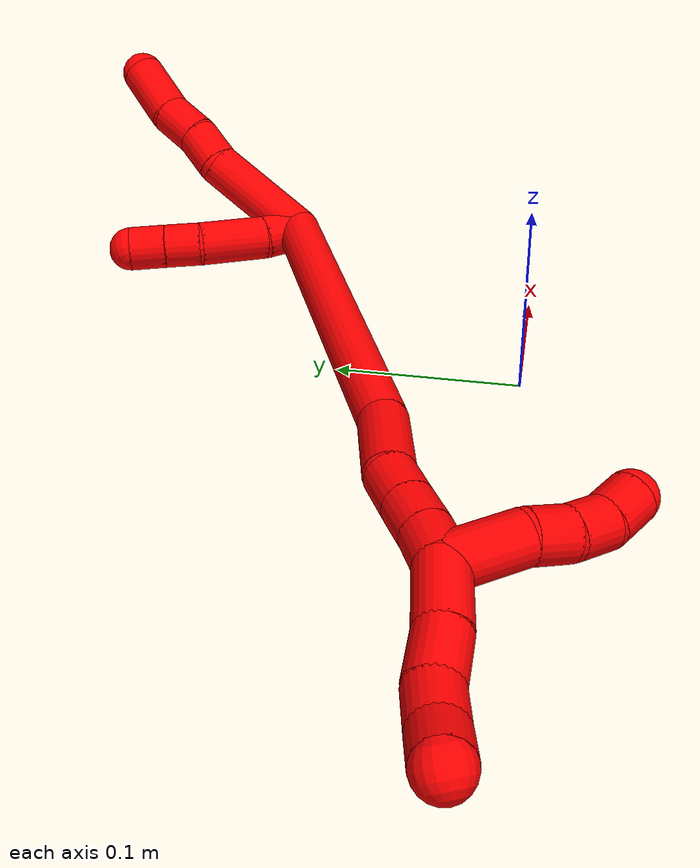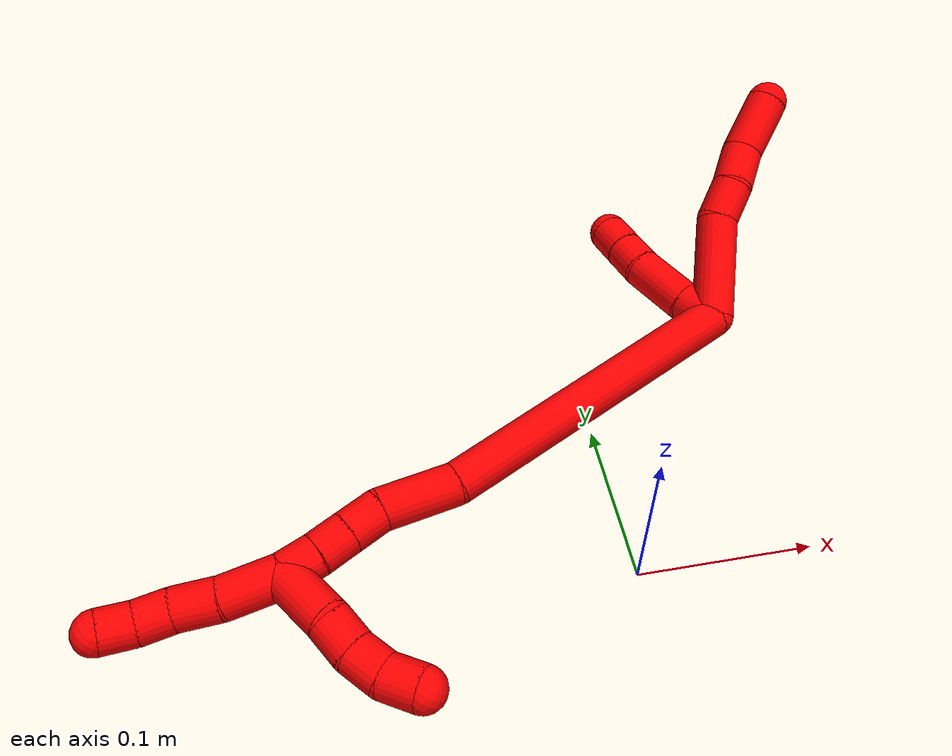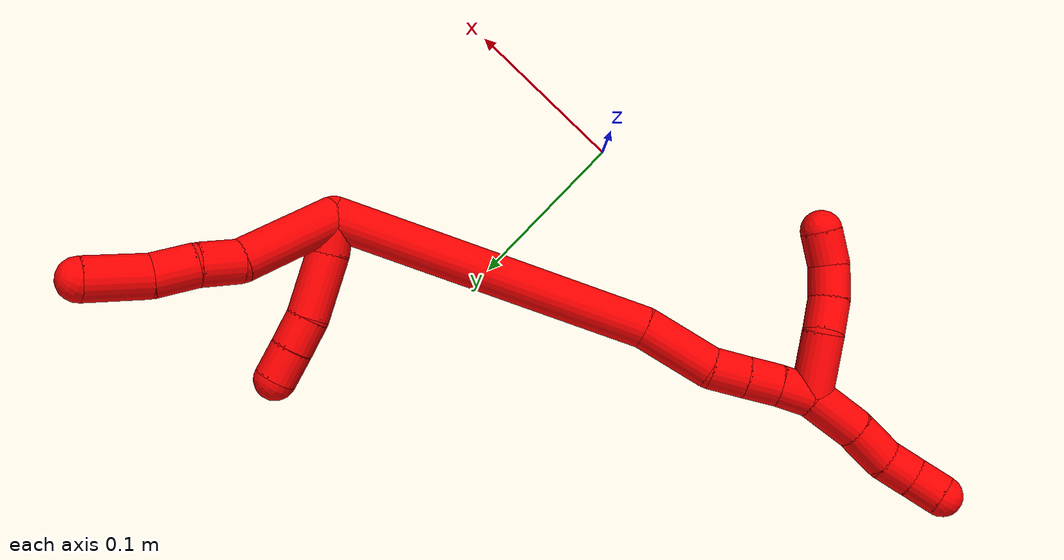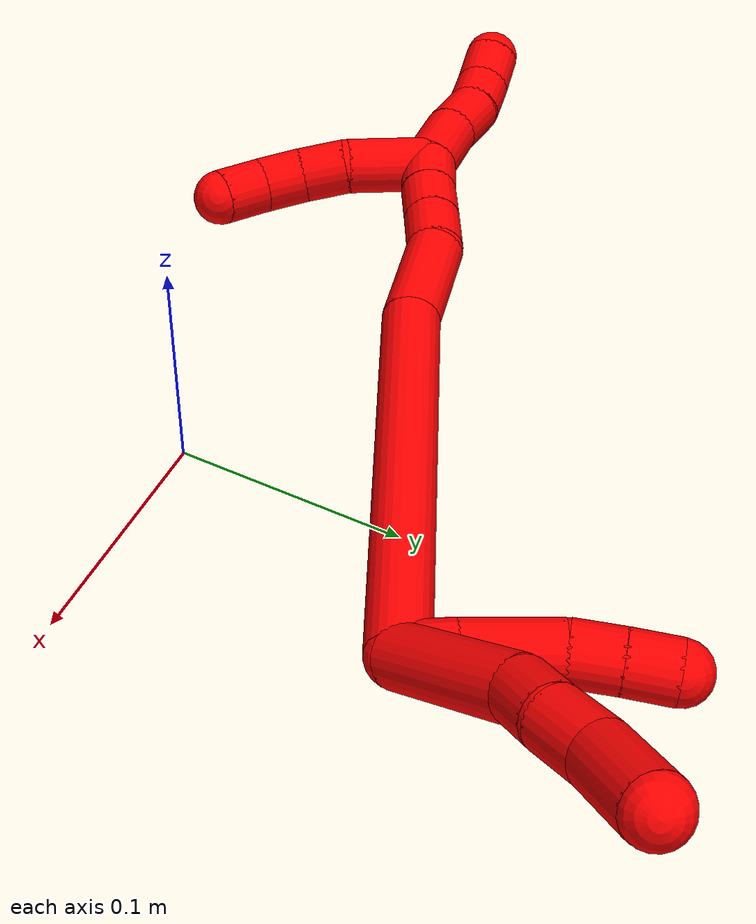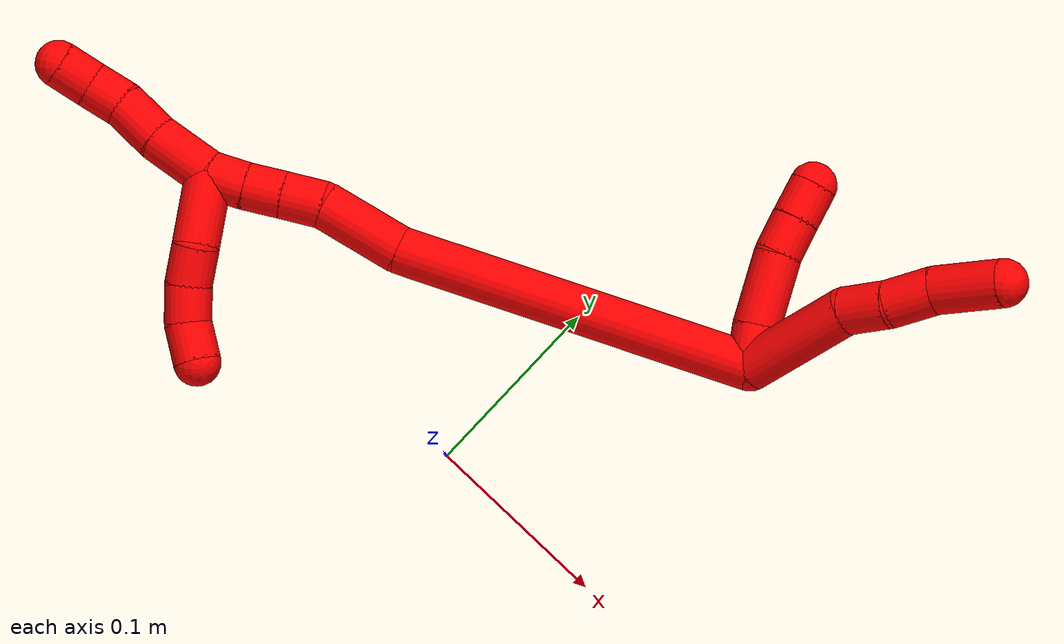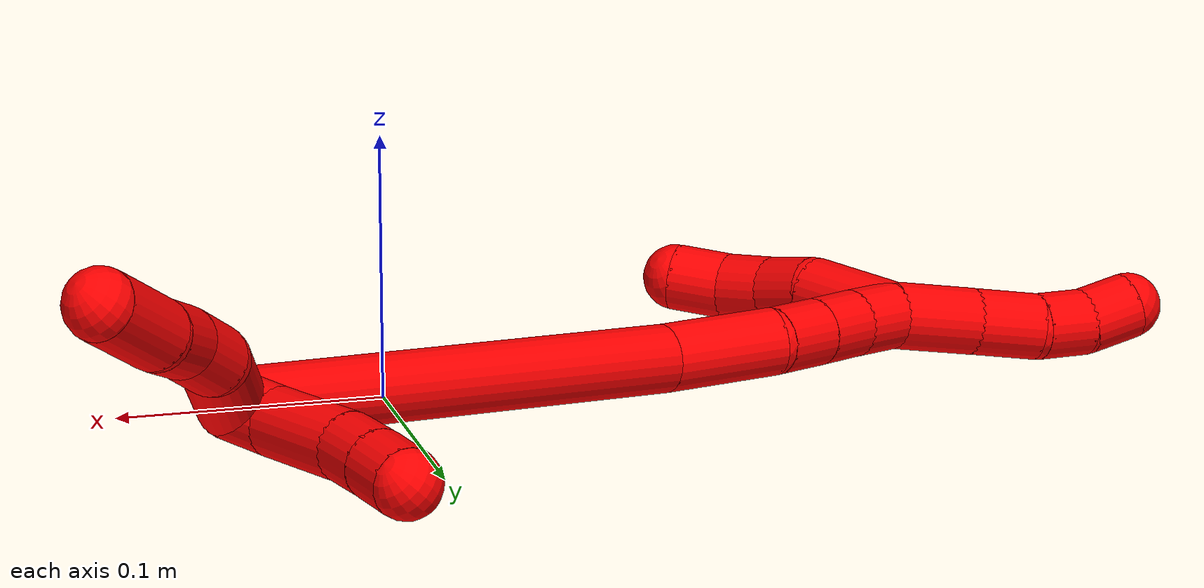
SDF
<sdf version="1.7">
 <world name="default">
  <model name="2">
   <static>0</static>
   <link name="2">
    <collision name="collision-cylinder-e_1_2_8">
     <pose>-0.017907 0.009382 0.023998 -0.37268 -0.607333 0.118016</pose>
     <geometry><cylinder><radius>0.0125</radius><length>0.062757</length></cylinder></geometry>
     <surface>
      <friction><ode><mu>1.16</mu><mu2>1.16</mu2><slip1>0</slip1><slip2>0</slip2></ode></friction>
      <contact><ode><kp>1e+06</kp><kd>1</kd><max_vel>0</max_vel><min_depth>0.001</min_depth></ode></contact>
     </surface>
    </collision>
    <visual name="visual-cylinder-e_1_2_8">
     <pose>-0.017907 0.009382 0.023998 -0.37268 -0.607333 0.118016</pose>
     <geometry><cylinder><radius>0.0125</radius><length>0.062757</length></cylinder></geometry>
     <material><ambient>1 0 0 1</ambient></material>
    </visual>
    <collision name="collision-cylinder-e_2_8_9">
     <pose>-0.039015 0.022692 0.059119 -0.33951 -0.264995 0.045681</pose>
     <geometry><cylinder><radius>0.0125</radius><length>0.024443</length></cylinder></geometry>
     <surface>
      <friction><ode><mu>1.16</mu><mu2>1.16</mu2><slip1>0</slip1><slip2>0</slip2></ode></friction>
      <contact><ode><kp>1e+06</kp><kd>1</kd><max_vel>0</max_vel><min_depth>0.001</min_depth></ode></contact>
     </surface>
    </collision>
    <visual name="visual-cylinder-e_2_8_9">
     <pose>-0.039015 0.022692 0.059119 -0.33951 -0.264995 0.045681</pose>
     <geometry><cylinder><radius>0.0125</radius><length>0.024443</length></cylinder></geometry>
     <material><ambient>1 0 0 1</ambient></material>
    </visual>
    <collision name="collision-cylinder-e_3_9_10">
     <pose>-0.046814 0.032403 0.080522 -0.512322 -0.371653 0.098398</pose>
     <geometry><cylinder><radius>0.0125</radius><length>0.02532</length></cylinder></geometry>
     <surface>
      <friction><ode><mu>1.16</mu><mu2>1.16</mu2><slip1>0</slip1><slip2>0</slip2></ode></friction>
      <contact><ode><kp>1e+06</kp><kd>1</kd><max_vel>0</max_vel><min_depth>0.001</min_depth></ode></contact>
     </surface>
    </collision>
    <visual name="visual-cylinder-e_3_9_10">
     <pose>-0.046814 0.032403 0.080522 -0.512322 -0.371653 0.098398</pose>
     <geometry><cylinder><radius>0.0125</radius><length>0.02532</length></cylinder></geometry>
     <material><ambient>1 0 0 1</ambient></material>
    </visual>
    <collision name="collision-cylinder-e_4_10_6">
     <pose>-0.055537 0.04414 0.108085 -0.331832 -0.221984 0.037322</pose>
     <geometry><cylinder><radius>0.0125</radius><length>0.03748</length></cylinder></geometry>
     <surface>
      <friction><ode><mu>1.16</mu><mu2>1.16</mu2><slip1>0</slip1><slip2>0</slip2></ode></friction>
      <contact><ode><kp>1e+06</kp><kd>1</kd><max_vel>0</max_vel><min_depth>0.001</min_depth></ode></contact>
     </surface>
    </collision>
    <visual name="visual-cylinder-e_4_10_6">
     <pose>-0.055537 0.04414 0.108085 -0.331832 -0.221984 0.037322</pose>
     <geometry><cylinder><radius>0.0125</radius><length>0.03748</length></cylinder></geometry>
     <material><ambient>1 0 0 1</ambient></material>
    </visual>
    <collision name="collision-cylinder-e_1_2_11">
     <pose>-0.00962 0.004095 -0.00189 -2.0032 -1.13238 1.56417</pose>
     <geometry><cylinder><radius>0.0125</radius><length>0.021249</length></cylinder></geometry>
     <surface>
      <friction><ode><mu>1.16</mu><mu2>1.16</mu2><slip1>0</slip1><slip2>0</slip2></ode></friction>
      <contact><ode><kp>1e+06</kp><kd>1</kd><max_vel>0</max_vel><min_depth>0.001</min_depth></ode></contact>
     </surface>
    </collision>
    <visual name="visual-cylinder-e_1_2_11">
     <pose>-0.00962 0.004095 -0.00189 -2.0032 -1.13238 1.56417</pose>
     <geometry><cylinder><radius>0.0125</radius><length>0.021249</length></cylinder></geometry>
     <material><ambient>1 0 0 1</ambient></material>
    </visual>
    <collision name="collision-cylinder-e_2_11_12">
     <pose>-0.036817 0.016132 -0.004109 -1.61219 -1.14611 1.18415</pose>
     <geometry><cylinder><radius>0.0125</radius><length>0.038584</length></cylinder></geometry>
     <surface>
      <friction><ode><mu>1.16</mu><mu2>1.16</mu2><slip1>0</slip1><slip2>0</slip2></ode></friction>
      <contact><ode><kp>1e+06</kp><kd>1</kd><max_vel>0</max_vel><min_depth>0.001</min_depth></ode></contact>
     </surface>
    </collision>
    <visual name="visual-cylinder-e_2_11_12">
     <pose>-0.036817 0.016132 -0.004109 -1.61219 -1.14611 1.18415</pose>
     <geometry><cylinder><radius>0.0125</radius><length>0.038584</length></cylinder></geometry>
     <material><ambient>1 0 0 1</ambient></material>
    </visual>
    <collision name="collision-cylinder-e_3_12_13">
     <pose>-0.06281 0.029461 -0.00357 -1.41103 -0.995533 0.866978</pose>
     <geometry><cylinder><radius>0.0125</radius><length>0.020059</length></cylinder></geometry>
     <surface>
      <friction><ode><mu>1.16</mu><mu2>1.16</mu2><slip1>0</slip1><slip2>0</slip2></ode></friction>
      <contact><ode><kp>1e+06</kp><kd>1</kd><max_vel>0</max_vel><min_depth>0.001</min_depth></ode></contact>
     </surface>
    </collision>
    <visual name="visual-cylinder-e_3_12_13">
     <pose>-0.06281 0.029461 -0.00357 -1.41103 -0.995533 0.866978</pose>
     <geometry><cylinder><radius>0.0125</radius><length>0.020059</length></cylinder></geometry>
     <material><ambient>1 0 0 1</ambient></material>
    </visual>
    <collision name="collision-cylinder-e_4_13_5">
     <pose>-0.079499 0.040495 -0.00183 -1.41767 -0.966342 0.845521</pose>
     <geometry><cylinder><radius>0.0125</radius><length>0.020109</length></cylinder></geometry>
     <surface>
      <friction><ode><mu>1.16</mu><mu2>1.16</mu2><slip1>0</slip1><slip2>0</slip2></ode></friction>
      <contact><ode><kp>1e+06</kp><kd>1</kd><max_vel>0</max_vel><min_depth>0.001</min_depth></ode></contact>
     </surface>
    </collision>
    <visual name="visual-cylinder-e_4_13_5">
     <pose>-0.079499 0.040495 -0.00183 -1.41767 -0.966342 0.845521</pose>
     <geometry><cylinder><radius>0.0125</radius><length>0.020109</length></cylinder></geometry>
     <material><ambient>1 0 0 1</ambient></material>
    </visual>
    <collision name="collision-cylinder-e_1_2_14">
     <pose>-0.025933 -0.051865 -0.076743 2.54728 -0.272987 -0.843248</pose>
     <geometry><cylinder><radius>0.0125</radius><length>0.192374</length></cylinder></geometry>
     <surface>
      <friction><ode><mu>1.16</mu><mu2>1.16</mu2><slip1>0</slip1><slip2>0</slip2></ode></friction>
      <contact><ode><kp>1e+06</kp><kd>1</kd><max_vel>0</max_vel><min_depth>0.001</min_depth></ode></contact>
     </surface>
    </collision>
    <visual name="visual-cylinder-e_1_2_14">
     <pose>-0.025933 -0.051865 -0.076743 2.54728 -0.272987 -0.843248</pose>
     <geometry><cylinder><radius>0.0125</radius><length>0.192374</length></cylinder></geometry>
     <material><ambient>1 0 0 1</ambient></material>
    </visual>
    <collision name="collision-cylinder-e_2_14_15">
     <pose>-0.062909 -0.115353 -0.169555 2.51536 -0.508073 -1.35186</pose>
     <geometry><cylinder><radius>0.0125</radius><length>0.0454</length></cylinder></geometry>
     <surface>
      <friction><ode><mu>1.16</mu><mu2>1.16</mu2><slip1>0</slip1><slip2>0</slip2></ode></friction>
      <contact><ode><kp>1e+06</kp><kd>1</kd><max_vel>0</max_vel><min_depth>0.001</min_depth></ode></contact>
     </surface>
    </collision>
    <visual name="visual-cylinder-e_2_14_15">
     <pose>-0.062909 -0.115353 -0.169555 2.51536 -0.508073 -1.35186</pose>
     <geometry><cylinder><radius>0.0125</radius><length>0.0454</length></cylinder></geometry>
     <material><ambient>1 0 0 1</ambient></material>
    </visual>
    <collision name="collision-cylinder-e_3_15_16">
     <pose>-0.07632 -0.133735 -0.193972 2.46103 -0.216921 -0.596734</pose>
     <geometry><cylinder><radius>0.0125</radius><length>0.021997</length></cylinder></geometry>
     <surface>
      <friction><ode><mu>1.16</mu><mu2>1.16</mu2><slip1>0</slip1><slip2>0</slip2></ode></friction>
      <contact><ode><kp>1e+06</kp><kd>1</kd><max_vel>0</max_vel><min_depth>0.001</min_depth></ode></contact>
     </surface>
    </collision>
    <visual name="visual-cylinder-e_3_15_16">
     <pose>-0.07632 -0.133735 -0.193972 2.46103 -0.216921 -0.596734</pose>
     <geometry><cylinder><radius>0.0125</radius><length>0.021997</length></cylinder></geometry>
     <material><ambient>1 0 0 1</ambient></material>
    </visual>
    <collision name="collision-cylinder-e_4_16_17">
     <pose>-0.080783 -0.146788 -0.209907 2.44902 -0.209551 -0.567175</pose>
     <geometry><cylinder><radius>0.0125</radius><length>0.020156</length></cylinder></geometry>
     <surface>
      <friction><ode><mu>1.16</mu><mu2>1.16</mu2><slip1>0</slip1><slip2>0</slip2></ode></friction>
      <contact><ode><kp>1e+06</kp><kd>1</kd><max_vel>0</max_vel><min_depth>0.001</min_depth></ode></contact>
     </surface>
    </collision>
    <visual name="visual-cylinder-e_4_16_17">
     <pose>-0.080783 -0.146788 -0.209907 2.44902 -0.209551 -0.567175</pose>
     <geometry><cylinder><radius>0.0125</radius><length>0.020156</length></cylinder></geometry>
     <material><ambient>1 0 0 1</ambient></material>
    </visual>
    <collision name="collision-cylinder-e_5_17_1">
     <pose>-0.085664 -0.159073 -0.225049 2.47117 -0.281048 -0.771452</pose>
     <geometry><cylinder><radius>0.0125</radius><length>0.020073</length></cylinder></geometry>
     <surface>
      <friction><ode><mu>1.16</mu><mu2>1.16</mu2><slip1>0</slip1><slip2>0</slip2></ode></friction>
      <contact><ode><kp>1e+06</kp><kd>1</kd><max_vel>0</max_vel><min_depth>0.001</min_depth></ode></contact>
     </surface>
    </collision>
    <visual name="visual-cylinder-e_5_17_1">
     <pose>-0.085664 -0.159073 -0.225049 2.47117 -0.281048 -0.771452</pose>
     <geometry><cylinder><radius>0.0125</radius><length>0.020073</length></cylinder></geometry>
     <material><ambient>1 0 0 1</ambient></material>
    </visual>
    <collision name="collision-cylinder-e_1_1_18">
     <pose>-0.096678 -0.170638 -0.246256 2.75398 -0.509105 -1.84907</pose>
     <geometry><cylinder><radius>0.0125</radius><length>0.033775</length></cylinder></geometry>
     <surface>
      <friction><ode><mu>1.16</mu><mu2>1.16</mu2><slip1>0</slip1><slip2>0</slip2></ode></friction>
      <contact><ode><kp>1e+06</kp><kd>1</kd><max_vel>0</max_vel><min_depth>0.001</min_depth></ode></contact>
     </surface>
    </collision>
    <visual name="visual-cylinder-e_1_1_18">
     <pose>-0.096678 -0.170638 -0.246256 2.75398 -0.509105 -1.84907</pose>
     <geometry><cylinder><radius>0.0125</radius><length>0.033775</length></cylinder></geometry>
     <material><ambient>1 0 0 1</ambient></material>
    </visual>
    <collision name="collision-cylinder-e_2_18_19">
     <pose>-0.112761 -0.179594 -0.269664 2.80784 -0.650111 -2.2146</pose>
     <geometry><cylinder><radius>0.0125</radius><length>0.025944</length></cylinder></geometry>
     <surface>
      <friction><ode><mu>1.16</mu><mu2>1.16</mu2><slip1>0</slip1><slip2>0</slip2></ode></friction>
      <contact><ode><kp>1e+06</kp><kd>1</kd><max_vel>0</max_vel><min_depth>0.001</min_depth></ode></contact>
     </surface>
    </collision>
    <visual name="visual-cylinder-e_2_18_19">
     <pose>-0.112761 -0.179594 -0.269664 2.80784 -0.650111 -2.2146</pose>
     <geometry><cylinder><radius>0.0125</radius><length>0.025944</length></cylinder></geometry>
     <material><ambient>1 0 0 1</ambient></material>
    </visual>
    <collision name="collision-cylinder-e_3_19_20">
     <pose>-0.125539 -0.187785 -0.286861 2.56788 -0.507549 -1.44244</pose>
     <geometry><cylinder><radius>0.0125</radius><length>0.020274</length></cylinder></geometry>
     <surface>
      <friction><ode><mu>1.16</mu><mu2>1.16</mu2><slip1>0</slip1><slip2>0</slip2></ode></friction>
      <contact><ode><kp>1e+06</kp><kd>1</kd><max_vel>0</max_vel><min_depth>0.001</min_depth></ode></contact>
     </surface>
    </collision>
    <visual name="visual-cylinder-e_3_19_20">
     <pose>-0.125539 -0.187785 -0.286861 2.56788 -0.507549 -1.44244</pose>
     <geometry><cylinder><radius>0.0125</radius><length>0.020274</length></cylinder></geometry>
     <material><ambient>1 0 0 1</ambient></material>
    </visual>
    <collision name="collision-cylinder-e_4_20_4">
     <pose>-0.136042 -0.198726 -0.299902 2.31085 -0.59129 -1.20875</pose>
     <geometry><cylinder><radius>0.0125</radius><length>0.020008</length></cylinder></geometry>
     <surface>
      <friction><ode><mu>1.16</mu><mu2>1.16</mu2><slip1>0</slip1><slip2>0</slip2></ode></friction>
      <contact><ode><kp>1e+06</kp><kd>1</kd><max_vel>0</max_vel><min_depth>0.001</min_depth></ode></contact>
     </surface>
    </collision>
    <visual name="visual-cylinder-e_4_20_4">
     <pose>-0.136042 -0.198726 -0.299902 2.31085 -0.59129 -1.20875</pose>
     <geometry><cylinder><radius>0.0125</radius><length>0.020008</length></cylinder></geometry>
     <material><ambient>1 0 0 1</ambient></material>
    </visual>
    <collision name="collision-cylinder-e_1_1_21">
     <pose>-0.071042 -0.1723 -0.229773 1.19775 1.15092 0.833582</pose>
     <geometry><cylinder><radius>0.0125</radius><length>0.038122</length></cylinder></geometry>
     <surface>
      <friction><ode><mu>1.16</mu><mu2>1.16</mu2><slip1>0</slip1><slip2>0</slip2></ode></friction>
      <contact><ode><kp>1e+06</kp><kd>1</kd><max_vel>0</max_vel><min_depth>0.001</min_depth></ode></contact>
     </surface>
    </collision>
    <visual name="visual-cylinder-e_1_1_21">
     <pose>-0.071042 -0.1723 -0.229773 1.19775 1.15092 0.833582</pose>
     <geometry><cylinder><radius>0.0125</radius><length>0.038122</length></cylinder></geometry>
     <material><ambient>1 0 0 1</ambient></material>
    </visual>
    <collision name="collision-cylinder-e_2_21_22">
     <pose>-0.04352 -0.181914 -0.227389 1.75712 1.33595 1.52119</pose>
     <geometry><cylinder><radius>0.0125</radius><length>0.020805</length></cylinder></geometry>
     <surface>
      <friction><ode><mu>1.16</mu><mu2>1.16</mu2><slip1>0</slip1><slip2>0</slip2></ode></friction>
      <contact><ode><kp>1e+06</kp><kd>1</kd><max_vel>0</max_vel><min_depth>0.001</min_depth></ode></contact>
     </surface>
    </collision>
    <visual name="visual-cylinder-e_2_21_22">
     <pose>-0.04352 -0.181914 -0.227389 1.75712 1.33595 1.52119</pose>
     <geometry><cylinder><radius>0.0125</radius><length>0.020805</length></cylinder></geometry>
     <material><ambient>1 0 0 1</ambient></material>
    </visual>
    <collision name="collision-cylinder-e_3_22_23">
     <pose>-0.023681 -0.185961 -0.226196 0.793263 1.33456 0.637435</pose>
     <geometry><cylinder><radius>0.0125</radius><length>0.02</length></cylinder></geometry>
     <surface>
      <friction><ode><mu>1.16</mu><mu2>1.16</mu2><slip1>0</slip1><slip2>0</slip2></ode></friction>
      <contact><ode><kp>1e+06</kp><kd>1</kd><max_vel>0</max_vel><min_depth>0.001</min_depth></ode></contact>
     </surface>
    </collision>
    <visual name="visual-cylinder-e_3_22_23">
     <pose>-0.023681 -0.185961 -0.226196 0.793263 1.33456 0.637435</pose>
     <geometry><cylinder><radius>0.0125</radius><length>0.02</length></cylinder></geometry>
     <material><ambient>1 0 0 1</ambient></material>
    </visual>
    <collision name="collision-cylinder-e_4_23_3">
     <pose>-0.004589 -0.188694 -0.219852 0.222689 1.09556 0.136206</pose>
     <geometry><cylinder><radius>0.0125</radius><length>0.021073</length></cylinder></geometry>
     <surface>
      <friction><ode><mu>1.16</mu><mu2>1.16</mu2><slip1>0</slip1><slip2>0</slip2></ode></friction>
      <contact><ode><kp>1e+06</kp><kd>1</kd><max_vel>0</max_vel><min_depth>0.001</min_depth></ode></contact>
     </surface>
    </collision>
    <visual name="visual-cylinder-e_4_23_3">
     <pose>-0.004589 -0.188694 -0.219852 0.222689 1.09556 0.136206</pose>
     <geometry><cylinder><radius>0.0125</radius><length>0.021073</length></cylinder></geometry>
     <material><ambient>1 0 0 1</ambient></material>
    </visual>
    <collision name="collision-sphere-3">
     <pose>0.00478 -0.189758 -0.21515 0 -0 0</pose>
     <geometry><sphere><radius>0.0125</radius></sphere></geometry>
     <surface>
      <friction><ode><mu>1.16</mu><mu2>1.16</mu2><slip1>0</slip1><slip2>0</slip2></ode></friction>
      <contact><ode><kp>1e+06</kp><kd>1</kd><max_vel>0</max_vel><min_depth>0.001</min_depth></ode></contact>
     </surface>
    </collision>
    <visual name="visual-sphere-3">
     <pose>0.00478 -0.189758 -0.21515 0 -0 0</pose>
     <geometry><sphere><radius>0.0125</radius></sphere></geometry>
     <material><ambient>1 0 0 1</ambient></material>
    </visual>
    <collision name="collision-sphere-23">
     <pose>-0.013958 -0.187629 -0.224554 0 -0 0</pose>
     <geometry><sphere><radius>0.0125</radius></sphere></geometry>
     <surface>
      <friction><ode><mu>1.16</mu><mu2>1.16</mu2><slip1>0</slip1><slip2>0</slip2></ode></friction>
      <contact><ode><kp>1e+06</kp><kd>1</kd><max_vel>0</max_vel><min_depth>0.001</min_depth></ode></contact>
     </surface>
    </collision>
    <visual name="visual-sphere-23">
     <pose>-0.013958 -0.187629 -0.224554 0 -0 0</pose>
     <geometry><sphere><radius>0.0125</radius></sphere></geometry>
     <material><ambient>1 0 0 1</ambient></material>
    </visual>
    <collision name="collision-sphere-22">
     <pose>-0.033403 -0.184293 -0.227838 0 -0 0</pose>
     <geometry><sphere><radius>0.0125</radius></sphere></geometry>
     <surface>
      <friction><ode><mu>1.16</mu><mu2>1.16</mu2><slip1>0</slip1><slip2>0</slip2></ode></friction>
      <contact><ode><kp>1e+06</kp><kd>1</kd><max_vel>0</max_vel><min_depth>0.001</min_depth></ode></contact>
     </surface>
    </collision>
    <visual name="visual-sphere-22">
     <pose>-0.033403 -0.184293 -0.227838 0 -0 0</pose>
     <geometry><sphere><radius>0.0125</radius></sphere></geometry>
     <material><ambient>1 0 0 1</ambient></material>
    </visual>
    <collision name="collision-sphere-21">
     <pose>-0.053637 -0.179536 -0.226941 0 -0 0</pose>
     <geometry><sphere><radius>0.0125</radius></sphere></geometry>
     <surface>
      <friction><ode><mu>1.16</mu><mu2>1.16</mu2><slip1>0</slip1><slip2>0</slip2></ode></friction>
      <contact><ode><kp>1e+06</kp><kd>1</kd><max_vel>0</max_vel><min_depth>0.001</min_depth></ode></contact>
     </surface>
    </collision>
    <visual name="visual-sphere-21">
     <pose>-0.053637 -0.179536 -0.226941 0 -0 0</pose>
     <geometry><sphere><radius>0.0125</radius></sphere></geometry>
     <material><ambient>1 0 0 1</ambient></material>
    </visual>
    <collision name="collision-sphere-4">
     <pose>-0.141619 -0.204859 -0.305503 0 -0 0</pose>
     <geometry><sphere><radius>0.0125</radius></sphere></geometry>
     <surface>
      <friction><ode><mu>1.16</mu><mu2>1.16</mu2><slip1>0</slip1><slip2>0</slip2></ode></friction>
      <contact><ode><kp>1e+06</kp><kd>1</kd><max_vel>0</max_vel><min_depth>0.001</min_depth></ode></contact>
     </surface>
    </collision>
    <visual name="visual-sphere-4">
     <pose>-0.141619 -0.204859 -0.305503 0 -0 0</pose>
     <geometry><sphere><radius>0.0125</radius></sphere></geometry>
     <material><ambient>1 0 0 1</ambient></material>
    </visual>
    <collision name="collision-sphere-20">
     <pose>-0.130466 -0.192593 -0.294301 0 -0 0</pose>
     <geometry><sphere><radius>0.0125</radius></sphere></geometry>
     <surface>
      <friction><ode><mu>1.16</mu><mu2>1.16</mu2><slip1>0</slip1><slip2>0</slip2></ode></friction>
      <contact><ode><kp>1e+06</kp><kd>1</kd><max_vel>0</max_vel><min_depth>0.001</min_depth></ode></contact>
     </surface>
    </collision>
    <visual name="visual-sphere-20">
     <pose>-0.130466 -0.192593 -0.294301 0 -0 0</pose>
     <geometry><sphere><radius>0.0125</radius></sphere></geometry>
     <material><ambient>1 0 0 1</ambient></material>
    </visual>
    <collision name="collision-sphere-11">
     <pose>-0.019239 0.00819 -0.00378 0 -0 0</pose>
     <geometry><sphere><radius>0.0125</radius></sphere></geometry>
     <surface>
      <friction><ode><mu>1.16</mu><mu2>1.16</mu2><slip1>0</slip1><slip2>0</slip2></ode></friction>
      <contact><ode><kp>1e+06</kp><kd>1</kd><max_vel>0</max_vel><min_depth>0.001</min_depth></ode></contact>
     </surface>
    </collision>
    <visual name="visual-sphere-11">
     <pose>-0.019239 0.00819 -0.00378 0 -0 0</pose>
     <geometry><sphere><radius>0.0125</radius></sphere></geometry>
     <material><ambient>1 0 0 1</ambient></material>
    </visual>
    <collision name="collision-sphere-6">
     <pose>-0.059663 0.050095 0.125368 0 -0 0</pose>
     <geometry><sphere><radius>0.0125</radius></sphere></geometry>
     <surface>
      <friction><ode><mu>1.16</mu><mu2>1.16</mu2><slip1>0</slip1><slip2>0</slip2></ode></friction>
      <contact><ode><kp>1e+06</kp><kd>1</kd><max_vel>0</max_vel><min_depth>0.001</min_depth></ode></contact>
     </surface>
    </collision>
    <visual name="visual-sphere-6">
     <pose>-0.059663 0.050095 0.125368 0 -0 0</pose>
     <geometry><sphere><radius>0.0125</radius></sphere></geometry>
     <material><ambient>1 0 0 1</ambient></material>
    </visual>
    <collision name="collision-sphere-10">
     <pose>-0.051411 0.038185 0.090803 0 -0 0</pose>
     <geometry><sphere><radius>0.0125</radius></sphere></geometry>
     <surface>
      <friction><ode><mu>1.16</mu><mu2>1.16</mu2><slip1>0</slip1><slip2>0</slip2></ode></friction>
      <contact><ode><kp>1e+06</kp><kd>1</kd><max_vel>0</max_vel><min_depth>0.001</min_depth></ode></contact>
     </surface>
    </collision>
    <visual name="visual-sphere-10">
     <pose>-0.051411 0.038185 0.090803 0 -0 0</pose>
     <geometry><sphere><radius>0.0125</radius></sphere></geometry>
     <material><ambient>1 0 0 1</ambient></material>
    </visual>
    <collision name="collision-sphere-9">
     <pose>-0.042216 0.02662 0.07024 0 -0 0</pose>
     <geometry><sphere><radius>0.0125</radius></sphere></geometry>
     <surface>
      <friction><ode><mu>1.16</mu><mu2>1.16</mu2><slip1>0</slip1><slip2>0</slip2></ode></friction>
      <contact><ode><kp>1e+06</kp><kd>1</kd><max_vel>0</max_vel><min_depth>0.001</min_depth></ode></contact>
     </surface>
    </collision>
    <visual name="visual-sphere-9">
     <pose>-0.042216 0.02662 0.07024 0 -0 0</pose>
     <geometry><sphere><radius>0.0125</radius></sphere></geometry>
     <material><ambient>1 0 0 1</ambient></material>
    </visual>
    <collision name="collision-sphere-2">
     <geometry><sphere><radius>0.0125</radius></sphere></geometry>
     <surface>
      <friction><ode><mu>1.16</mu><mu2>1.16</mu2><slip1>0</slip1><slip2>0</slip2></ode></friction>
      <contact><ode><kp>1e+06</kp><kd>1</kd><max_vel>0</max_vel><min_depth>0.001</min_depth></ode></contact>
     </surface>
    </collision>
    <visual name="visual-sphere-2">
     <geometry><sphere><radius>0.0125</radius></sphere></geometry>
     <material><ambient>1 0 0 1</ambient></material>
    </visual>
    <collision name="collision-sphere-19">
     <pose>-0.120612 -0.182977 -0.27942 0 -0 0</pose>
     <geometry><sphere><radius>0.0125</radius></sphere></geometry>
     <surface>
      <friction><ode><mu>1.16</mu><mu2>1.16</mu2><slip1>0</slip1><slip2>0</slip2></ode></friction>
      <contact><ode><kp>1e+06</kp><kd>1</kd><max_vel>0</max_vel><min_depth>0.001</min_depth></ode></contact>
     </surface>
    </collision>
    <visual name="visual-sphere-19">
     <pose>-0.120612 -0.182977 -0.27942 0 -0 0</pose>
     <geometry><sphere><radius>0.0125</radius></sphere></geometry>
     <material><ambient>1 0 0 1</ambient></material>
    </visual>
    <collision name="collision-sphere-8">
     <pose>-0.035814 0.018764 0.047997 0 -0 0</pose>
     <geometry><sphere><radius>0.0125</radius></sphere></geometry>
     <surface>
      <friction><ode><mu>1.16</mu><mu2>1.16</mu2><slip1>0</slip1><slip2>0</slip2></ode></friction>
      <contact><ode><kp>1e+06</kp><kd>1</kd><max_vel>0</max_vel><min_depth>0.001</min_depth></ode></contact>
     </surface>
    </collision>
    <visual name="visual-sphere-8">
     <pose>-0.035814 0.018764 0.047997 0 -0 0</pose>
     <geometry><sphere><radius>0.0125</radius></sphere></geometry>
     <material><ambient>1 0 0 1</ambient></material>
    </visual>
    <collision name="collision-sphere-12">
     <pose>-0.054395 0.024074 -0.004438 0 -0 0</pose>
     <geometry><sphere><radius>0.0125</radius></sphere></geometry>
     <surface>
      <friction><ode><mu>1.16</mu><mu2>1.16</mu2><slip1>0</slip1><slip2>0</slip2></ode></friction>
      <contact><ode><kp>1e+06</kp><kd>1</kd><max_vel>0</max_vel><min_depth>0.001</min_depth></ode></contact>
     </surface>
    </collision>
    <visual name="visual-sphere-12">
     <pose>-0.054395 0.024074 -0.004438 0 -0 0</pose>
     <geometry><sphere><radius>0.0125</radius></sphere></geometry>
     <material><ambient>1 0 0 1</ambient></material>
    </visual>
    <collision name="collision-sphere-13">
     <pose>-0.071226 0.034848 -0.002702 0 -0 0</pose>
     <geometry><sphere><radius>0.0125</radius></sphere></geometry>
     <surface>
      <friction><ode><mu>1.16</mu><mu2>1.16</mu2><slip1>0</slip1><slip2>0</slip2></ode></friction>
      <contact><ode><kp>1e+06</kp><kd>1</kd><max_vel>0</max_vel><min_depth>0.001</min_depth></ode></contact>
     </surface>
    </collision>
    <visual name="visual-sphere-13">
     <pose>-0.071226 0.034848 -0.002702 0 -0 0</pose>
     <geometry><sphere><radius>0.0125</radius></sphere></geometry>
     <material><ambient>1 0 0 1</ambient></material>
    </visual>
    <collision name="collision-sphere-5">
     <pose>-0.087772 0.046143 -0.000958 0 -0 0</pose>
     <geometry><sphere><radius>0.0125</radius></sphere></geometry>
     <surface>
      <friction><ode><mu>1.16</mu><mu2>1.16</mu2><slip1>0</slip1><slip2>0</slip2></ode></friction>
      <contact><ode><kp>1e+06</kp><kd>1</kd><max_vel>0</max_vel><min_depth>0.001</min_depth></ode></contact>
     </surface>
    </collision>
    <visual name="visual-sphere-5">
     <pose>-0.087772 0.046143 -0.000958 0 -0 0</pose>
     <geometry><sphere><radius>0.0125</radius></sphere></geometry>
     <material><ambient>1 0 0 1</ambient></material>
    </visual>
    <collision name="collision-sphere-14">
     <pose>-0.051866 -0.103729 -0.153486 0 -0 0</pose>
     <geometry><sphere><radius>0.0125</radius></sphere></geometry>
     <surface>
      <friction><ode><mu>1.16</mu><mu2>1.16</mu2><slip1>0</slip1><slip2>0</slip2></ode></friction>
      <contact><ode><kp>1e+06</kp><kd>1</kd><max_vel>0</max_vel><min_depth>0.001</min_depth></ode></contact>
     </surface>
    </collision>
    <visual name="visual-sphere-14">
     <pose>-0.051866 -0.103729 -0.153486 0 -0 0</pose>
     <geometry><sphere><radius>0.0125</radius></sphere></geometry>
     <material><ambient>1 0 0 1</ambient></material>
    </visual>
    <collision name="collision-sphere-15">
     <pose>-0.073953 -0.126977 -0.185625 0 -0 0</pose>
     <geometry><sphere><radius>0.0125</radius></sphere></geometry>
     <surface>
      <friction><ode><mu>1.16</mu><mu2>1.16</mu2><slip1>0</slip1><slip2>0</slip2></ode></friction>
      <contact><ode><kp>1e+06</kp><kd>1</kd><max_vel>0</max_vel><min_depth>0.001</min_depth></ode></contact>
     </surface>
    </collision>
    <visual name="visual-sphere-15">
     <pose>-0.073953 -0.126977 -0.185625 0 -0 0</pose>
     <geometry><sphere><radius>0.0125</radius></sphere></geometry>
     <material><ambient>1 0 0 1</ambient></material>
    </visual>
    <collision name="collision-sphere-16">
     <pose>-0.078687 -0.140493 -0.20232 0 -0 0</pose>
     <geometry><sphere><radius>0.0125</radius></sphere></geometry>
     <surface>
      <friction><ode><mu>1.16</mu><mu2>1.16</mu2><slip1>0</slip1><slip2>0</slip2></ode></friction>
      <contact><ode><kp>1e+06</kp><kd>1</kd><max_vel>0</max_vel><min_depth>0.001</min_depth></ode></contact>
     </surface>
    </collision>
    <visual name="visual-sphere-16">
     <pose>-0.078687 -0.140493 -0.20232 0 -0 0</pose>
     <geometry><sphere><radius>0.0125</radius></sphere></geometry>
     <material><ambient>1 0 0 1</ambient></material>
    </visual>
    <collision name="collision-sphere-17">
     <pose>-0.08288 -0.153082 -0.217493 0 -0 0</pose>
     <geometry><sphere><radius>0.0125</radius></sphere></geometry>
     <surface>
      <friction><ode><mu>1.16</mu><mu2>1.16</mu2><slip1>0</slip1><slip2>0</slip2></ode></friction>
      <contact><ode><kp>1e+06</kp><kd>1</kd><max_vel>0</max_vel><min_depth>0.001</min_depth></ode></contact>
     </surface>
    </collision>
    <visual name="visual-sphere-17">
     <pose>-0.08288 -0.153082 -0.217493 0 -0 0</pose>
     <geometry><sphere><radius>0.0125</radius></sphere></geometry>
     <material><ambient>1 0 0 1</ambient></material>
    </visual>
    <collision name="collision-sphere-1">
     <pose>-0.088447 -0.165064 -0.232605 0 -0 0</pose>
     <geometry><sphere><radius>0.0125</radius></sphere></geometry>
     <surface>
      <friction><ode><mu>1.16</mu><mu2>1.16</mu2><slip1>0</slip1><slip2>0</slip2></ode></friction>
      <contact><ode><kp>1e+06</kp><kd>1</kd><max_vel>0</max_vel><min_depth>0.001</min_depth></ode></contact>
     </surface>
    </collision>
    <visual name="visual-sphere-1">
     <pose>-0.088447 -0.165064 -0.232605 0 -0 0</pose>
     <geometry><sphere><radius>0.0125</radius></sphere></geometry>
     <material><ambient>1 0 0 1</ambient></material>
    </visual>
    <collision name="collision-sphere-18">
     <pose>-0.104909 -0.176211 -0.259908 0 -0 0</pose>
     <geometry><sphere><radius>0.0125</radius></sphere></geometry>
     <surface>
      <friction><ode><mu>1.16</mu><mu2>1.16</mu2><slip1>0</slip1><slip2>0</slip2></ode></friction>
      <contact><ode><kp>1e+06</kp><kd>1</kd><max_vel>0</max_vel><min_depth>0.001</min_depth></ode></contact>
     </surface>
    </collision>
    <visual name="visual-sphere-18">
     <pose>-0.104909 -0.176211 -0.259908 0 -0 0</pose>
     <geometry><sphere><radius>0.0125</radius></sphere></geometry>
     <material><ambient>1 0 0 1</ambient></material>
    </visual>
    <inertial>
     <pose>-0.051121 -0.073106 -0.102025 0 -0 0</pose>
     <mass>0.75</mass>
     <inertia>
      <ixx>-3.4e-05</ixx>
      <ixy>0</ixy>
      <ixz>0</ixz>
      <iyy>-0.000662</iyy>
      <iyz>0</iyz>
      <izz>0.000499</izz>
     </inertia>
    </inertial>
   </link>
   <pose>0.083315 0.13985 0.046883 -0.761913 0.323511 -0.814567</pose>
  </model>
 </world>
</sdf>
